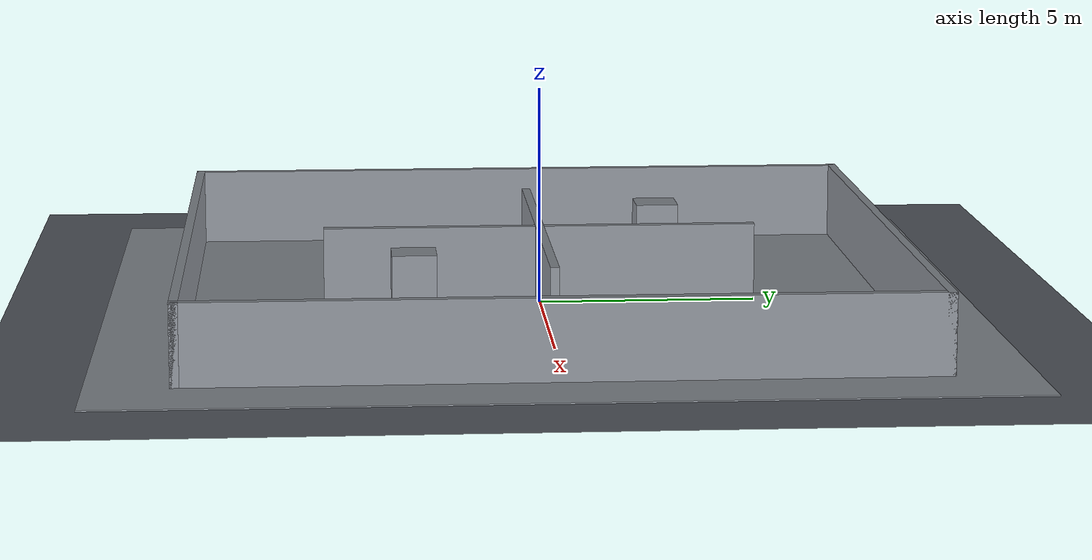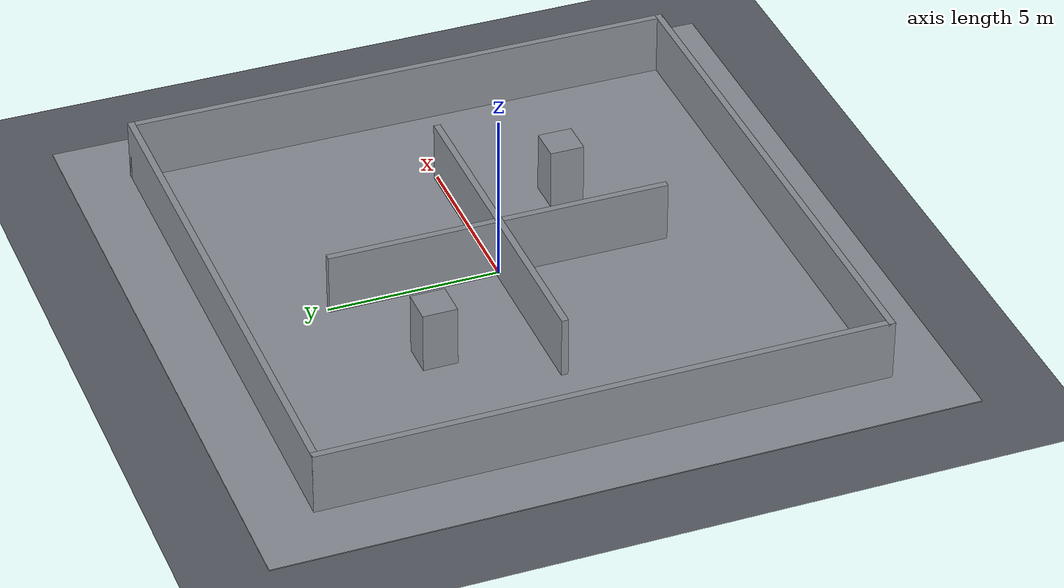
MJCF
<!-- Generated by robot_lab_maps/tools/gen_mjcf_worlds.py from
     maps/nav_dynamic/worlds/nav_dynamic.world - do not edit by hand. -->
<mujoco model="nav_dynamic">
  <option gravity="0 0 -9.81" />
  <compiler angle="radian" />
  <worldbody>
    <geom type="plane" size="100 100 0.1" contype="0" conaffinity="0" rgba="0.35 0.37 0.4 1" />
    <geom pos="0 0 -0.05" quat="1 0 0 0" rgba="0.55 0.57 0.6 1" type="box" size="10 10 0.05" />
    <geom pos="0 -8.1 0.9" quat="1 0 0 0" rgba="0.55 0.57 0.6 1" type="box" size="8.2 0.1 0.9" />
    <geom pos="0 8.1 0.9" quat="1 0 0 0" rgba="0.55 0.57 0.6 1" type="box" size="8.2 0.1 0.9" />
    <geom pos="-8.1 0 0.9" quat="1 0 0 0" rgba="0.55 0.57 0.6 1" type="box" size="0.1 8.2 0.9" />
    <geom pos="8.1 0 0.9" quat="1 0 0 0" rgba="0.55 0.57 0.6 1" type="box" size="0.1 8.2 0.9" />
    <geom pos="0 0 0.9" quat="1 0 0 0" rgba="0.55 0.57 0.6 1" type="box" size="0.1 5 0.9" />
    <geom pos="0 0 0.9" quat="1 0 0 0" rgba="0.55 0.57 0.6 1" type="box" size="5 0.1 0.9" />
    <geom pos="-3 3 0.9" quat="1 0 0 0" rgba="0.55 0.57 0.6 1" type="box" size="0.5 0.5 0.9" />
    <geom pos="3 -3 0.9" quat="1 0 0 0" rgba="0.55 0.57 0.6 1" type="box" size="0.5 0.5 0.9" />
    <light diffuse="0.8 0.8 0.8" pos="0 0 10" dir="0 0 -1" castshadow="true" />
    <light diffuse="0.3 0.3 0.3" pos="0 -6 6" dir="0 1 -1" />
  </worldbody>
</mujoco>
